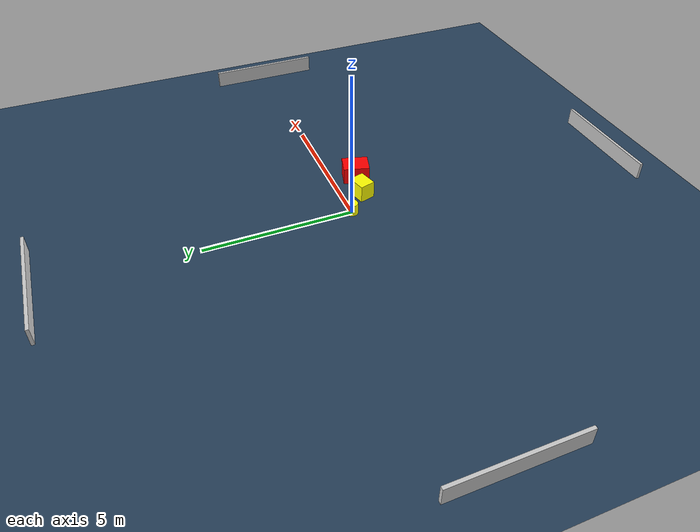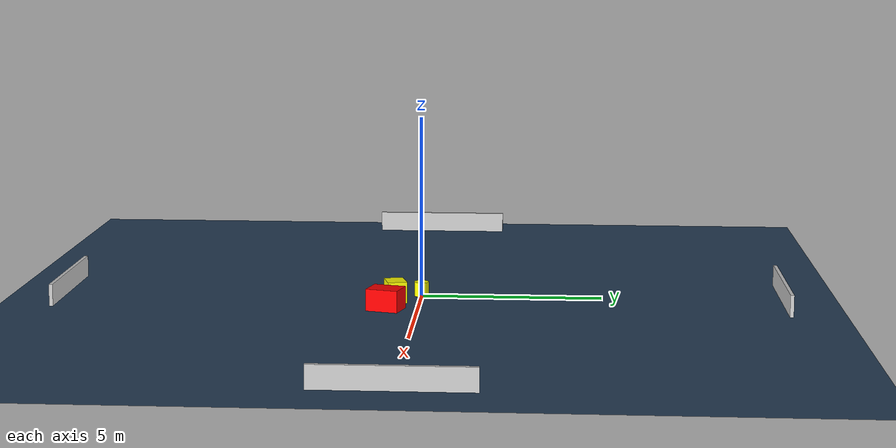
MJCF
<?xml version="1.0" ?>
<mujoco model="generated_environment">
  <option timestep="0.01" integrator="RK4" cone="elliptic"/>
  <default>
    <geom density="1"/>
  </default>
  <asset>
    <texture builtin="gradient" height="3072" name="skybox" rgb1="0.3 0.5 0.7" rgb2="0 0 0" type="skybox" width="512"/>
    <texture builtin="checker" height="300" name="groundplane" rgb1="0.2 0.3 0.4" rgb2="0.1 0.2 0.3" type="2d" width="300"/>
    <material name="groundplane" reflectance="0.2" texrepeat="5 5" texture="groundplane"/>
  </asset>
  <worldbody>
    <light dir="0 0 -1" directional="true" pos="0 0 1.5"/>
    <geom condim="3" friction="0.5 0.005 0.001" material="groundplane" name="floor" pos="0 0 0" size="0 0 0.05" type="plane"/>
    <body name="walls">
      <geom name="wall_1" condim="4" pos="-10.0 0.0 0.3" rgba="0.800000011920929 0.800000011920929 0.800000011920929 1.0" size="0.05 2.0 0.3" type="box"/>
      <geom name="wall_2" condim="4" pos="10.0 0.0 0.3" rgba="0.800000011920929 0.800000011920929 0.800000011920929 1.0" size="0.05 2.0 0.3" type="box"/>
      <geom name="wall_3" condim="4" pos="0.0 -10.0 0.3" rgba="0.800000011920929 0.800000011920929 0.800000011920929 1.0" size="2.0 0.05 0.3" type="box"/>
      <geom name="wall_4" condim="4" pos="0.0 10.0 0.3" rgba="0.800000011920929 0.800000011920929 0.800000011920929 1.0" size="2.0 0.05 0.3" type="box"/>
    </body>
    <body name="robot">
      <joint name="joint_x" type="slide" pos="0 0 0" axis="1 0 0"/>
      <joint name="joint_y" type="slide" pos="0 0 0" axis="0 1 0"/>
      <geom name="robot" type="cylinder" pos="0.0 0.0 0.2" size="0.2 0.2 0.0" mass="5.0" friction="1.0 0.005 0.0001" condim="4" rgba="1.0 1.0 0.0 1.0"/>
    </body>
    <body name="obstacle_1_movable">
      <geom name="obstacle_1_movable" condim="4" pos="0.7741739545332442 -0.6726789356449805 0.3" euler="0 0 285.8198249321416" friction="0.0 0.005 0.001" rgba="1.0 1.0 0.0 1.0" size="0.26529770107886225 0.31907276508249166 0.3" type="box" mass="0.1"/>
      <joint type="free"/>
    </body>
    <body name="obstacle_2_static">
      <geom name="obstacle_2_static" condim="4" pos="1.7775066575903968 -0.8529881021043335 0.3" euler="0 0 344.4812718062358" friction="0.0 0.005 0.001" rgba="1.0 0.0 0.0 1.0" size="0.3481874984474669 0.44604314632783437 0.3" type="box"/>
    </body>
  </worldbody>
  <actuator>
    <motor name="actuator_x" joint="joint_x" gear="1" ctrlrange="-1 1"/>
    <motor name="actuator_y" joint="joint_y" gear="1" ctrlrange="-1 1"/>
  </actuator>
</mujoco>
